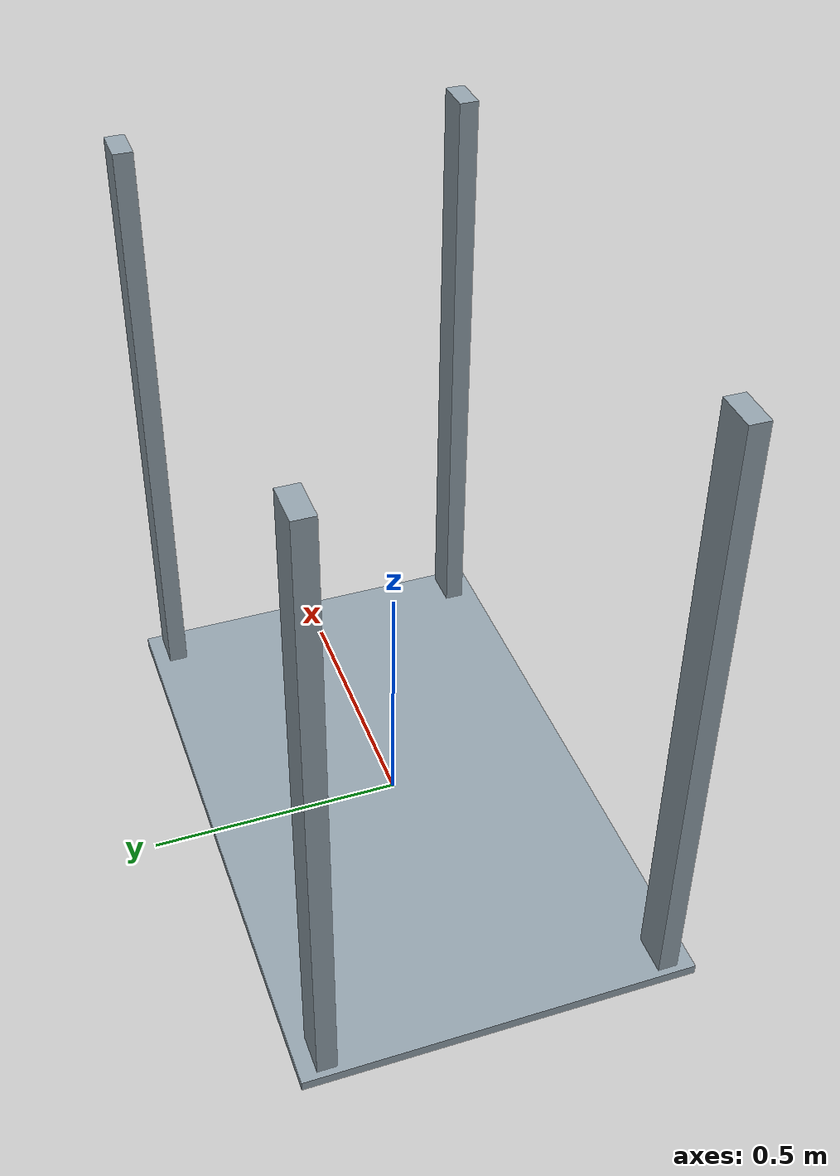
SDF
<?xml version="1.0"?>
<sdf version='1.6'>
<model name="amazon_table">
  <link name="amazon_table">
    <pose>0 0 0 0 0 0 </pose>
    <inertial>
      <mass>1</mass>
        <inertia>
          <ixx>1</ixx>
          <ixy>0</ixy>
          <ixz>0</ixz>
          <iyy>1</iyy>
          <iyz>0</iyz>
          <izz>1</izz>
        </inertia>
    </inertial>

    <visual name='tabletop'>
      <pose>0 0 -0.01 0 0 0</pose>
      <geometry>
        <box>
          <size>1.220 0.762 0.02</size>
        </box>
      </geometry>
      <material>
        <diffuse>0.57 0.63 0.67 0.9</diffuse>
      </material>
    </visual>

    <visual name='upper_right_post'>
      <pose>0.559 0.330 0.61 0 0 0</pose>
      <geometry>
        <box>
          <size>0.0762 0.0381 1.22</size>
        </box>
      </geometry>
      <material>
        <diffuse>0.57 0.63 0.67 0.9</diffuse>
      </material>
    </visual>

    <visual name='upper_left_post'>
      <pose>0.559 -0.330 0.61 0 0 0</pose>
      <geometry>
        <box>
          <size>0.0762 0.0381 1.22</size>
        </box>
      </geometry>
      <material>
        <diffuse>0.57 0.63 0.67 0.9</diffuse>
      </material>
    </visual>

    <visual name='lower_right_post'>
      <pose>-0.559 0.330  0.61 0 0 0</pose>
      <geometry>
        <box>
          <size>0.0762 0.0381 1.22</size>
        </box>
      </geometry>
      <material>
        <diffuse>0.57 0.63 0.67 0.9</diffuse>
      </material>
    </visual>

    <visual name='lower_left_post'>
      <pose>-0.559 -0.330 0.61 0 0 0</pose>
      <geometry>
        <box>
          <size>0.0762 0.0381 1.22</size>
        </box>
      </geometry>
      <material>
        <diffuse>0.57 0.63 0.67 0.9</diffuse>
      </material>
    </visual>

    <collision name='tabletop'>
      <pose>0 0 -0.01 0 0 0</pose>
      <geometry>
        <box>
          <size>1.220 0.762 0.02</size>
        </box>
      </geometry>
    </collision>

   </link>
</model>
</sdf>
